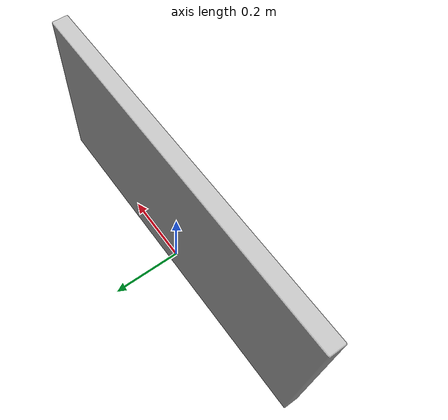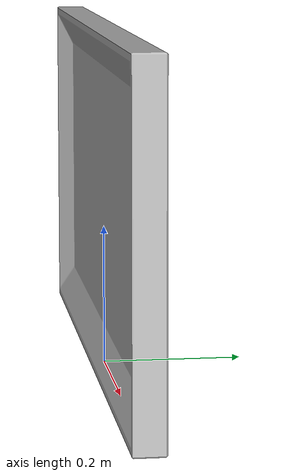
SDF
<?xml version="1.0" ?>
<sdf version="1.8">
  <model name="aws_robomaker_residential_PortraitD_02">
    <link name="link">

      <inertial>
        <mass>1.5</mass>
        <inertia>
          <ixx>  2.3174663948e-02 </ixx>
          <ixy> -1.2593853815e-08 </ixy>
          <ixz>  8.1109314687e-09 </ixz>
          <iyy>  9.0866794378e-02 </iyy>
          <iyz> -4.6072781400e-09 </iyz>
          <izz>  1.1385944236e-01 </izz>
        </inertia>
      </inertial>

      <collision name="collision">
        <geometry>
          <mesh>
            <uri>model://aws_robomaker_residential_PortraitD_02/meshes/aws_PortraitD_01_collision.DAE</uri>
            <scale>1 1 1</scale>
          </mesh>
        </geometry>

      </collision>

      <visual name="visual">
	      <geometry>
          <mesh>
            <uri>model://aws_robomaker_residential_PortraitD_02/meshes/aws_PortraitD_01_visual.DAE</uri>
          </mesh>
        </geometry>
      <meta> <layer> 2 </layer></meta>
      </visual>
    </link>
	  <static>1</static>
  </model>
</sdf>
